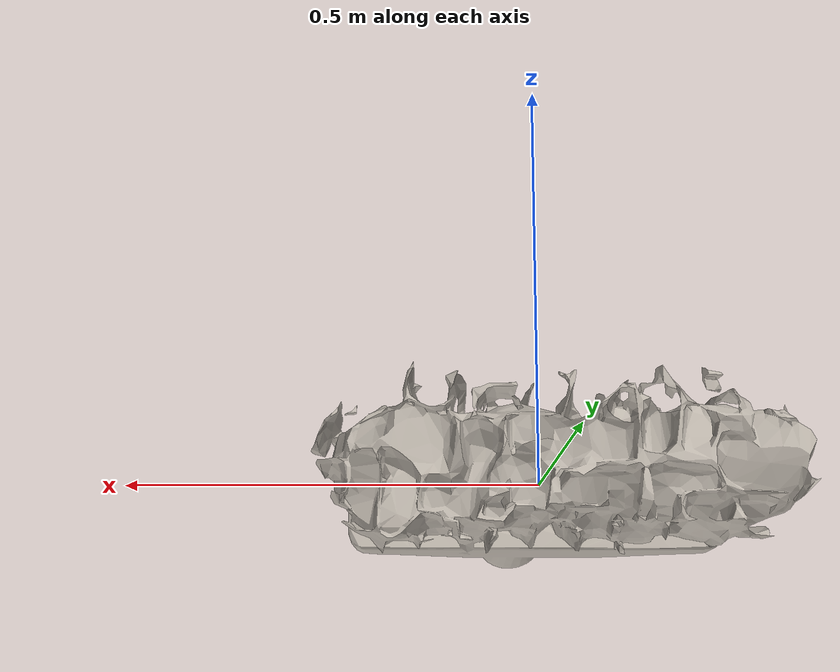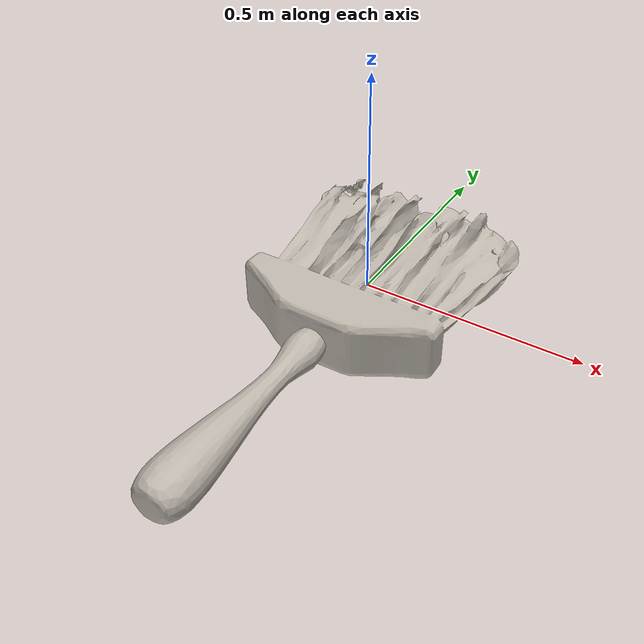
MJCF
<mujoco model="hand_brush">
  <default>
    <default class="visual">
      <geom group="2" type="mesh" contype="0" conaffinity="0"/>
    </default>
    <default class="collision">
      <geom group="3" type="mesh"/>
    </default>
  </default>
  <asset>
    <texture type="2d" name="material_0" file="material_0.png"/>
    <material name="material_0" texture="material_0" specular="0.4000000000000001" shininess="0.001"/>
    <mesh file="hand_brush.obj"/>
    <mesh file="hand_brush_collision_0.obj"/>
    <mesh file="hand_brush_collision_1.obj"/>
    <mesh file="hand_brush_collision_2.obj"/>
    <mesh file="hand_brush_collision_3.obj"/>
    <mesh file="hand_brush_collision_4.obj"/>
    <mesh file="hand_brush_collision_5.obj"/>
    <mesh file="hand_brush_collision_6.obj"/>
    <mesh file="hand_brush_collision_7.obj"/>
    <mesh file="hand_brush_collision_8.obj"/>
    <mesh file="hand_brush_collision_9.obj"/>
    <mesh file="hand_brush_collision_10.obj"/>
    <mesh file="hand_brush_collision_11.obj"/>
    <mesh file="hand_brush_collision_12.obj"/>
    <mesh file="hand_brush_collision_13.obj"/>
    <mesh file="hand_brush_collision_14.obj"/>
    <mesh file="hand_brush_collision_15.obj"/>
    <mesh file="hand_brush_collision_16.obj"/>
    <mesh file="hand_brush_collision_17.obj"/>
    <mesh file="hand_brush_collision_18.obj"/>
    <mesh file="hand_brush_collision_19.obj"/>
    <mesh file="hand_brush_collision_20.obj"/>
    <mesh file="hand_brush_collision_21.obj"/>
    <mesh file="hand_brush_collision_22.obj"/>
    <mesh file="hand_brush_collision_23.obj"/>
  </asset>
  <worldbody>
    <body name="hand_brush">
      <geom material="material_0" mesh="hand_brush" class="visual"/>
      <geom mesh="hand_brush_collision_0" rgba="0.21598656205847877 0.349661291658652 0.8098976865396365 1" class="collision"/>
      <geom mesh="hand_brush_collision_1" rgba="0.038158886932374125 0.5636934469881552 0.8241542088578167 1" class="collision"/>
      <geom mesh="hand_brush_collision_2" rgba="0.33332559082738533 0.2792315224642661 0.5072797048980706 1" class="collision"/>
      <geom mesh="hand_brush_collision_3" rgba="0.9875078359443435 0.22425091800315688 0.17699585000092022 1" class="collision"/>
      <geom mesh="hand_brush_collision_4" rgba="0.7951483112160385 0.44673738828740706 0.7445260769359657 1" class="collision"/>
      <geom mesh="hand_brush_collision_5" rgba="0.5417190071994841 0.8462715794937768 0.4911997230041234 1" class="collision"/>
      <geom mesh="hand_brush_collision_6" rgba="0.3799585758303733 0.7611564221915631 0.0683769694596742 1" class="collision"/>
      <geom mesh="hand_brush_collision_7" rgba="0.21078620886629462 0.3790273935112609 0.7584750362895806 1" class="collision"/>
      <geom mesh="hand_brush_collision_8" rgba="0.00968037782603104 0.3440602473479444 0.8563449356959889 1" class="collision"/>
      <geom mesh="hand_brush_collision_9" rgba="0.698265511980523 0.09248392065517497 0.800847709409091 1" class="collision"/>
      <geom mesh="hand_brush_collision_10" rgba="0.5329937285633995 0.6283105793702269 0.8202751034245674 1" class="collision"/>
      <geom mesh="hand_brush_collision_11" rgba="0.3944641742882934 0.5577965489109293 0.5891194279436398 1" class="collision"/>
      <geom mesh="hand_brush_collision_12" rgba="0.7500630732162114 0.7110286628678724 0.6571930668549693 1" class="collision"/>
      <geom mesh="hand_brush_collision_13" rgba="0.3884841770259325 0.5093008603286625 0.21342133782943185 1" class="collision"/>
      <geom mesh="hand_brush_collision_14" rgba="0.7735056446276258 0.6588902627131825 0.4845493774912788 1" class="collision"/>
      <geom mesh="hand_brush_collision_15" rgba="0.9980345269031937 0.7421890030881554 0.9835855749563998 1" class="collision"/>
      <geom mesh="hand_brush_collision_16" rgba="0.5455525333242477 0.8046233570749055 0.8134124930090388 1" class="collision"/>
      <geom mesh="hand_brush_collision_17" rgba="0.6520140134701661 0.32790065895852916 0.6451880681451565 1" class="collision"/>
      <geom mesh="hand_brush_collision_18" rgba="0.23911006142683278 0.4008789693539566 0.291248008577243 1" class="collision"/>
      <geom mesh="hand_brush_collision_19" rgba="0.03841951135772981 0.3960024651695463 0.7960419166308539 1" class="collision"/>
      <geom mesh="hand_brush_collision_20" rgba="0.8365151319642418 0.7006987220275956 0.8249814622503004 1" class="collision"/>
      <geom mesh="hand_brush_collision_21" rgba="0.3302489696804012 0.3333197653035608 0.42845977577296357 1" class="collision"/>
      <geom mesh="hand_brush_collision_22" rgba="0.858520319000936 0.16774284480993296 0.7149902284747376 1" class="collision"/>
      <geom mesh="hand_brush_collision_23" rgba="0.28104981873168944 0.40242200193756217 0.8224550230471751 1" class="collision"/>
    </body>
  </worldbody>
</mujoco>
